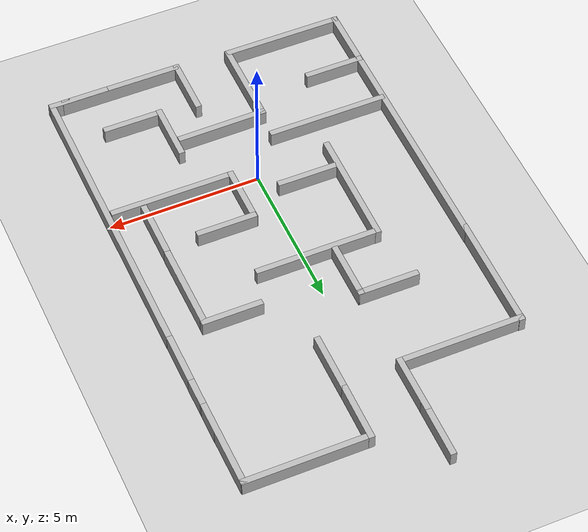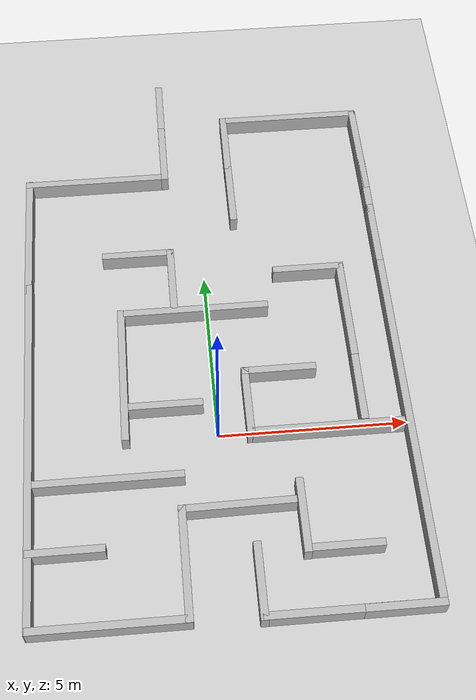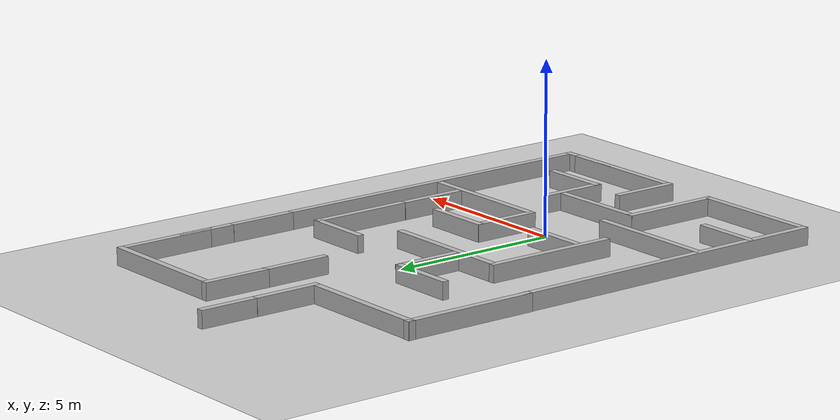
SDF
<sdf version="1.7">
 <world name="maze_world">
  <model name="ground_plane">
   <static>1</static>
   <link name="link">
    <collision name="collision">
     <geometry><plane><normal>0 0 1</normal><size>100 100</size></plane></geometry>
     <surface>
      <contact><collide_bitmask>65535</collide_bitmask></contact>
      <friction><ode><mu>100</mu><mu2>50</mu2></ode></friction>
     </surface>
    </collision>
    <visual name="visual">
     <cast_shadows>0</cast_shadows>
     <geometry><plane><normal>0 0 1</normal><size>100 100</size></plane></geometry>
     <material>
      <script><uri>file://media/materials/scripts/gazebo.material</uri><name>Gazebo/Grey</name></script>
     </material>
    </visual>
   </link>
  </model>
  <light name="sun" type="directional">
   <pose>0 0 10 0 -0 0</pose>
   <diffuse>0.8 0.8 0.8 1</diffuse>
   <specular>0.2 0.2 0.2 1</specular>
   <attenuation>
    <range>1000</range>
    <constant>0.9</constant>
    <linear>0.01</linear>
    <quadratic>0.001</quadratic>
   </attenuation>
   <direction>-0.5 0.1 -0.9</direction>
   <spot><inner_angle>0</inner_angle><outer_angle>0</outer_angle><falloff>0</falloff></spot>
  </light>
  <model name="south_wall_left">
   <static>1</static>
   <link name="link">
    <collision name="collision"><geometry><box><size>4 0.2 0.5</size></box></geometry></collision>
    <visual name="visual"><geometry><box><size>4 0.2 0.5</size></box></geometry></visual>
    <pose>-3 -5 0.25 0 -0 0</pose>
   </link>
  </model>
  <model name="south_wall_right">
   <pose>-0.33667 -0.08478 0 0 -0 0</pose>
   <static>1</static>
   <link name="link">
    <collision name="collision"><geometry><box><size>4 0.2 0.5</size></box></geometry></collision>
    <visual name="visual"><geometry><box><size>4 0.2 0.5</size></box></geometry></visual>
    <pose>3 -5 0.25 0 -0 0</pose>
   </link>
  </model>
  <model name="west_wall">
   <pose>0.07752 -0.091172 0 0 -0 0</pose>
   <static>1</static>
   <link name="link">
    <collision name="collision"><geometry><box><size>0.2 10 0.5</size></box></geometry></collision>
    <visual name="visual"><geometry><box><size>0.2 10 0.5</size></box></geometry></visual>
    <pose>-5 0 0.25 0 -0 0</pose>
   </link>
  </model>
  <model name="east_wall">
   <pose>0.00631 0.003506 0 0 -0 0</pose>
   <static>1</static>
   <link name="link">
    <collision name="collision"><geometry><box><size>0.2 10 0.5</size></box></geometry></collision>
    <visual name="visual"><geometry><box><size>0.2 10 0.5</size></box></geometry></visual>
    <pose>5 0 0.25 0 -0 0</pose>
   </link>
  </model>
  <model name="wall_1">
   <pose>-0.135692 -0.105129 0 0 0 -1.56432</pose>
   <static>1</static>
   <link name="link">
    <collision name="collision"><geometry><box><size>3 0.2 0.5</size></box></geometry></collision>
    <visual name="visual"><geometry><box><size>3 0.2 0.5</size></box></geometry></visual>
    <pose>-3.5 4 0.25 0 -0 0</pose>
   </link>
  </model>
  <model name="wall_2">
   <pose>0.91386 -6.09347 0 0 -0 0</pose>
   <static>1</static>
   <link name="link">
    <collision name="collision"><geometry><box><size>0.2 3 0.5</size></box></geometry></collision>
    <visual name="visual"><geometry><box><size>0.2 3 0.5</size></box></geometry></visual>
    <pose>-2 2.5 0.25 0 -0 0</pose>
   </link>
  </model>
  <model name="wall_3">
   <pose>-2.94728 -4.22411 0 0 -0 0</pose>
   <static>1</static>
   <link name="link">
    <collision name="collision"><geometry><box><size>4 0.2 0.5</size></box></geometry></collision>
    <visual name="visual"><geometry><box><size>4 0.2 0.5</size></box></geometry></visual>
    <pose>0 3 0.25 0 -0 0</pose>
   </link>
  </model>
  <model name="wall_4">
   <pose>0.93137 -4.57458 0 0 -0 0</pose>
   <static>1</static>
   <link name="link">
    <collision name="collision"><geometry><box><size>0.2 2 0.5</size></box></geometry></collision>
    <visual name="visual"><geometry><box><size>0.2 2 0.5</size></box></geometry></visual>
    <pose>1 2 0.25 0 -0 0</pose>
   </link>
  </model>
  <gravity>0 0 -9.8</gravity>
  <magnetic_field>6e-06 2.3e-05 -4.2e-05</magnetic_field>
  <atmosphere type="adiabatic"/>
  <physics type="ode">
   <max_step_size>0.001</max_step_size>
   <real_time_factor>1</real_time_factor>
   <real_time_update_rate>1000</real_time_update_rate>
  </physics>
  <scene><ambient>0.4 0.4 0.4 1</ambient><background>0.7 0.7 0.7 1</background><shadows>1</shadows></scene>
  <audio><device>default</device></audio>
  <spherical_coordinates>
   <surface_model>EARTH_WGS84</surface_model>
   <latitude_deg>0</latitude_deg>
   <longitude_deg>0</longitude_deg>
   <elevation>0</elevation>
   <heading_deg>0</heading_deg>
  </spherical_coordinates>
  <model name="wall_2_clone">
   <static>1</static>
   <link name="link">
    <collision name="collision"><geometry><box><size>0.2 3 0.5</size></box></geometry></collision>
    <visual name="visual"><geometry><box><size>0.2 3 0.5</size></box></geometry></visual>
    <pose>-2 2.5 0.25 0 -0 0</pose>
   </link>
   <pose>-2.1601 -4.1983 0 0 0 -1.55952</pose>
  </model>
  <model name="south_wall_right_clone">
   <static>1</static>
   <link name="link">
    <collision name="collision"><geometry><box><size>4 0.2 0.5</size></box></geometry></collision>
    <visual name="visual"><geometry><box><size>4 0.2 0.5</size></box></geometry></visual>
    <pose>3 -5 0.25 0 -0 0</pose>
   </link>
   <pose>0.07229 15.5433 0 0 -0 0</pose>
  </model>
  <model name="south_wall_right_clone_0">
   <static>1</static>
   <link name="link">
    <collision name="collision"><geometry><box><size>4 0.2 0.5</size></box></geometry></collision>
    <visual name="visual"><geometry><box><size>4 0.2 0.5</size></box></geometry></visual>
    <pose>3 -5 0.25 0 -0 0</pose>
   </link>
   <pose>-6.01242 13.4896 0 0 -0 0</pose>
  </model>
  <model name="wall_3_clone">
   <static>1</static>
   <link name="link">
    <collision name="collision"><geometry><box><size>4 0.2 0.5</size></box></geometry></collision>
    <visual name="visual"><geometry><box><size>4 0.2 0.5</size></box></geometry></visual>
    <pose>0 3 0.25 0 -0 0</pose>
   </link>
   <pose>2.88757 -3.16363 0 0 -0 0</pose>
  </model>
  <model name="wall_3_clone_0">
   <static>1</static>
   <link name="link">
    <collision name="collision"><geometry><box><size>4 0.2 0.5</size></box></geometry></collision>
    <visual name="visual"><geometry><box><size>4 0.2 0.5</size></box></geometry></visual>
    <pose>0 3 0.25 0 -0 0</pose>
   </link>
   <pose>-0.321356 0.732284 0 0 -0 0</pose>
  </model>
  <model name="wall_3_clone_1">
   <static>1</static>
   <link name="link">
    <collision name="collision"><geometry><box><size>4 0.2 0.5</size></box></geometry></collision>
    <visual name="visual"><geometry><box><size>4 0.2 0.5</size></box></geometry></visual>
    <pose>0 3 0.25 0 -0 0</pose>
   </link>
   <pose>-5.4008 1.85729 0 0 0 -1.57793</pose>
  </model>
  <model name="wall_4_clone">
   <static>1</static>
   <link name="link">
    <collision name="collision"><geometry><box><size>0.2 2 0.5</size></box></geometry></collision>
    <visual name="visual"><geometry><box><size>0.2 2 0.5</size></box></geometry></visual>
    <pose>1 2 0.25 0 -0 0</pose>
   </link>
   <pose>-0.006022 5.72296 0 0 -0 0</pose>
  </model>
  <model name="wall_4_clone_0">
   <static>1</static>
   <link name="link">
    <collision name="collision"><geometry><box><size>0.2 2 0.5</size></box></geometry></collision>
    <visual name="visual"><geometry><box><size>0.2 2 0.5</size></box></geometry></visual>
    <pose>1 2 0.25 0 -0 0</pose>
   </link>
   <pose>-1.91245 7.39118 0 0 -0 0</pose>
  </model>
  <model name="wall_4_clone_1">
   <static>1</static>
   <link name="link">
    <collision name="collision"><geometry><box><size>0.2 2 0.5</size></box></geometry></collision>
    <visual name="visual"><geometry><box><size>0.2 2 0.5</size></box></geometry></visual>
    <pose>1 2 0.25 0 -0 0</pose>
   </link>
   <pose>-0.239363 2.65041 0 0 0 -1.56923</pose>
  </model>
  <model name="wall_4_clone_2">
   <static>1</static>
   <link name="link">
    <collision name="collision"><geometry><box><size>0.2 2 0.5</size></box></geometry></collision>
    <visual name="visual"><geometry><box><size>0.2 2 0.5</size></box></geometry></visual>
    <pose>1 2 0.25 0 -0 0</pose>
   </link>
   <pose>-0.302112 -6.18783 0 0 -0 0</pose>
  </model>
  <model name="wall_4_clone_2_clone">
   <static>1</static>
   <link name="link">
    <collision name="collision"><geometry><box><size>0.2 2 0.5</size></box></geometry></collision>
    <visual name="visual"><geometry><box><size>0.2 2 0.5</size></box></geometry></visual>
    <pose>1 2 0.25 0 -0 0</pose>
   </link>
   <pose>2.10026 -4.08966 0 0 0 -1.56919</pose>
  </model>
  <model name="wall_4_clone_0_clone">
   <static>1</static>
   <link name="link">
    <collision name="collision"><geometry><box><size>0.2 2 0.5</size></box></geometry></collision>
    <visual name="visual"><geometry><box><size>0.2 2 0.5</size></box></geometry></visual>
    <pose>1 2 0.25 0 -0 0</pose>
   </link>
   <pose>-0.153045 -1.25773 0 0 -0 0</pose>
  </model>
  <model name="wall_4_clone_3">
   <static>1</static>
   <link name="link">
    <collision name="collision"><geometry><box><size>0.2 2 0.5</size></box></geometry></collision>
    <visual name="visual"><geometry><box><size>0.2 2 0.5</size></box></geometry></visual>
    <pose>1 2 0.25 0 -0 0</pose>
   </link>
   <pose>2.84496 -1.05076 0 0 -0 0</pose>
  </model>
  <model name="wall_4_clone_3_clone">
   <static>1</static>
   <link name="link">
    <collision name="collision"><geometry><box><size>0.2 2 0.5</size></box></geometry></collision>
    <visual name="visual"><geometry><box><size>0.2 2 0.5</size></box></geometry></visual>
    <pose>1 2 0.25 0 -0 0</pose>
   </link>
   <pose>-3.33111 1.80962 0 0 0 -1.57279</pose>
  </model>
  <model name="wall_4_clone_1_clone">
   <static>1</static>
   <link name="link">
    <collision name="collision"><geometry><box><size>0.2 2 0.5</size></box></geometry></collision>
    <visual name="visual"><geometry><box><size>0.2 2 0.5</size></box></geometry></visual>
    <pose>1 2 0.25 0 -0 0</pose>
   </link>
   <pose>0.855676 -2.46494 0 0 0 -1.56923</pose>
  </model>
  <model name="wall_4_clone_1_clone_0">
   <static>1</static>
   <link name="link">
    <collision name="collision"><geometry><box><size>0.2 2 0.5</size></box></geometry></collision>
    <visual name="visual"><geometry><box><size>0.2 2 0.5</size></box></geometry></visual>
    <pose>1 2 0.25 0 -0 0</pose>
   </link>
   <pose>-6.00907 -2.0636 0 0 0 -1.56923</pose>
  </model>
  <model name="wall_4_clone_1_clone_1">
   <static>1</static>
   <link name="link">
    <collision name="collision"><geometry><box><size>0.2 2 0.5</size></box></geometry></collision>
    <visual name="visual"><geometry><box><size>0.2 2 0.5</size></box></geometry></visual>
    <pose>1 2 0.25 0 -0 0</pose>
   </link>
   <pose>0.107646 13.0903 0 0 -0 3.13565</pose>
  </model>
  <model name="wall_4_clone_3_clone_0">
   <static>1</static>
   <link name="link">
    <collision name="collision"><geometry><box><size>0.2 2 0.5</size></box></geometry></collision>
    <visual name="visual"><geometry><box><size>0.2 2 0.5</size></box></geometry></visual>
    <pose>1 2 0.25 0 -0 0</pose>
   </link>
   <pose>4.00148 3.95264 -0 0 -0 0</pose>
  </model>
  <model name="wall_4_clone_1_clone_clone">
   <static>1</static>
   <link name="link">
    <collision name="collision"><geometry><box><size>0.2 2 0.5</size></box></geometry></collision>
    <visual name="visual"><geometry><box><size>0.2 2 0.5</size></box></geometry></visual>
    <pose>1 2 0.25 0 -0 0</pose>
   </link>
   <pose>0.936203 5.86281 0 0 0 -1.56923</pose>
  </model>
  <model name="wall_3_clone_1_clone">
   <static>1</static>
   <link name="link">
    <collision name="collision"><geometry><box><size>4 0.2 0.5</size></box></geometry></collision>
    <visual name="visual"><geometry><box><size>4 0.2 0.5</size></box></geometry></visual>
    <pose>0 3 0.25 0 -0 0</pose>
   </link>
   <pose>-7.91798 6.6253 0 0 0 -1.57793</pose>
  </model>
  <model name="wall_4_clone_1_clone_1_clone">
   <static>1</static>
   <link name="link">
    <collision name="collision"><geometry><box><size>0.2 2 0.5</size></box></geometry></collision>
    <visual name="visual"><geometry><box><size>0.2 2 0.5</size></box></geometry></visual>
    <pose>1 2 0.25 0 -0 0</pose>
   </link>
   <pose>2.00846 11.641 0 0 -0 3.13565</pose>
  </model>
  <model name="wall_4_clone_0_clone_clone">
   <static>1</static>
   <link name="link">
    <collision name="collision"><geometry><box><size>0.2 2 0.5</size></box></geometry></collision>
    <visual name="visual"><geometry><box><size>0.2 2 0.5</size></box></geometry></visual>
    <pose>1 2 0.25 0 -0 0</pose>
   </link>
   <pose>-1.91263 2.80068 0 0 -0 0</pose>
  </model>
  <model name="wall_4_clone_3_clone_clone">
   <static>1</static>
   <link name="link">
    <collision name="collision"><geometry><box><size>0.2 2 0.5</size></box></geometry></collision>
    <visual name="visual"><geometry><box><size>0.2 2 0.5</size></box></geometry></visual>
    <pose>1 2 0.25 0 -0 0</pose>
   </link>
   <pose>-3.83959 6.71734 0 0 0 -1.57279</pose>
  </model>
  <model name="wall_1_clone">
   <static>1</static>
   <link name="link">
    <collision name="collision"><geometry><box><size>3 0.2 0.5</size></box></geometry></collision>
    <visual name="visual"><geometry><box><size>3 0.2 0.5</size></box></geometry></visual>
    <pose>-3.5 4 0.25 0 -0 0</pose>
   </link>
   <pose>1.01763 5.5769 0 0 0 -1.56432</pose>
  </model>
  <model name="wall_4_clone_0_clone_clone_clone">
   <static>1</static>
   <link name="link">
    <collision name="collision"><geometry><box><size>0.2 2 0.5</size></box></geometry></collision>
    <visual name="visual"><geometry><box><size>0.2 2 0.5</size></box></geometry></visual>
    <pose>1 2 0.25 0 -0 0</pose>
   </link>
   <pose>4.00399 5.67235 0 0 -0 0</pose>
  </model>
 </world>
</sdf>
